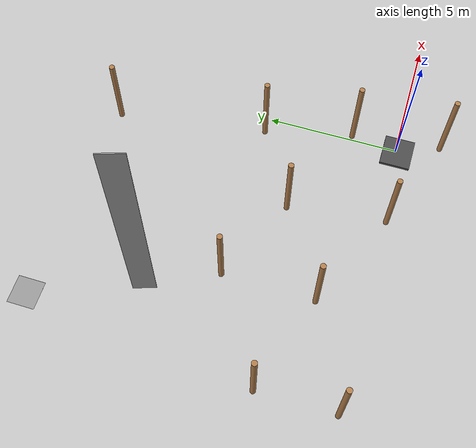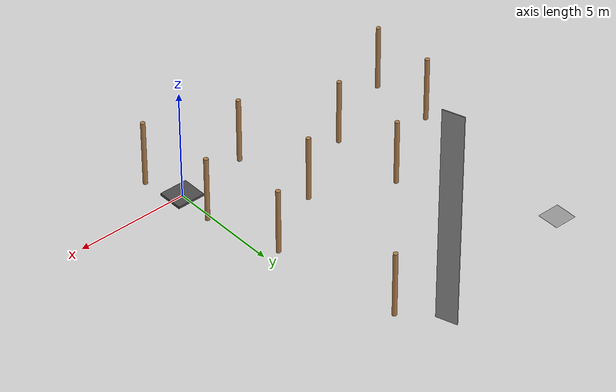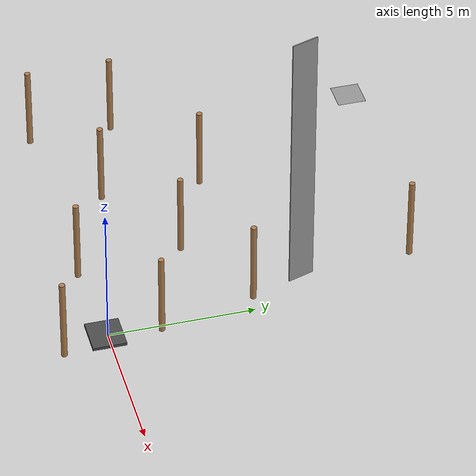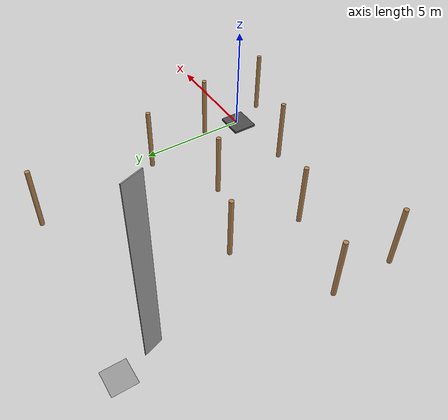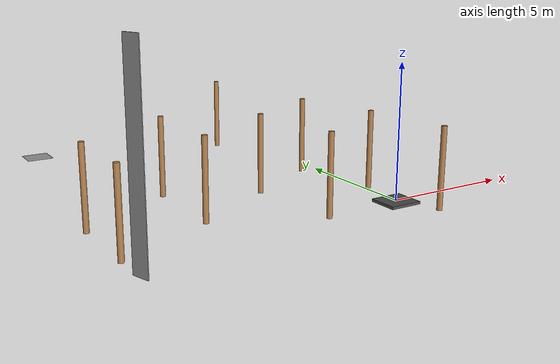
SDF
<sdf version="1.7">
 <world name="default">
  <model name="asphalt_plane">
   <pose>-0.054783 -0.070898 0 0 -0 0</pose>
   <static>1</static>
   <link name="link">
    <collision name="collision"><geometry><box><size>1.26307 1.14506 0.1</size></box></geometry></collision>
    <visual name="visual">
     <cast_shadows>0</cast_shadows>
     <geometry><box><size>1.26307 1.14506 0.1</size></box></geometry>
     <material>
      <script>
       <uri>model://asphalt_plane/materials/scripts</uri>
       <uri>model://asphalt_plane/materials/textures</uri>
       <name>vrc/asphalt</name>
      </script>
     </material>
    </visual>
   </link>
  </model>
  <model name="wooden_cylinder1_clone_1">
   <pose>-10.642 2.62246 -6e-05 0 -0 0</pose>
   <link name="wooden_cylinder::link_0">
    <pose>0 0 1.5 0 -0 0</pose>
    <inertial>
     <mass>1</mass>
     <inertia><ixx>0.145833</ixx><ixy>0</ixy><ixz>0</ixz><iyy>0.145833</iyy><iyz>0</iyz><izz>0.125</izz></inertia>
    </inertial>
    <visual name="visual">
     <geometry><cylinder><radius>0.1</radius><length>3</length></cylinder></geometry>
     <material>
      <lighting>1</lighting>
      <script><uri>file://media/materials/scripts/gazebo.material</uri><name>Gazebo/Wood</name></script>
      <ambient>0.3 0.3 0.3 1</ambient>
      <diffuse>0.7 0.7 0.7 1</diffuse>
      <specular>0.01 0.01 0.01 1</specular>
      <emissive>0 0 0 1</emissive>
      <shader type="vertex"><normal_map>__default__</normal_map></shader>
     </material>
    </visual>
    <collision name="collision">
     <geometry><cylinder><radius>0.1</radius><length>3</length></cylinder></geometry>
     <surface>
      <friction>
       <ode><mu>1</mu><mu2>1</mu2><fdir1>0 0 0</fdir1><slip1>0</slip1><slip2>0</slip2></ode>
       <torsional>
        <coefficient>1</coefficient>
        <patch_radius>0</patch_radius>
        <surface_radius>0</surface_radius>
        <use_patch_radius>1</use_patch_radius>
        <ode><slip>0</slip></ode>
       </torsional>
      </friction>
      <bounce><restitution_coefficient>0</restitution_coefficient><threshold>1e+06</threshold></bounce>
      <contact>
       <collide_without_contact>0</collide_without_contact>
       <collide_without_contact_bitmask>1</collide_without_contact_bitmask>
       <collide_bitmask>1</collide_bitmask>
       <ode>
        <soft_cfm>0</soft_cfm>
        <soft_erp>0.2</soft_erp>
        <kp>1e+13</kp>
        <kd>1</kd>
        <max_vel>0.01</max_vel>
        <min_depth>0</min_depth>
       </ode>
       <bullet>
        <split_impulse>1</split_impulse>
        <split_impulse_penetration_threshold>-0.01</split_impulse_penetration_threshold>
        <soft_cfm>0</soft_cfm>
        <soft_erp>0.2</soft_erp>
        <kp>1e+13</kp>
        <kd>1</kd>
       </bullet>
      </contact>
     </surface>
    </collision>
   </link>
   <static>1</static>
  </model>
  <model name="wooden_cylinder1_clone_4">
   <pose>-10.6103 -0.27054 0.0001 0 -0 0</pose>
   <link name="wooden_cylinder::link_0">
    <pose>0 0 1.5 0 -0 0</pose>
    <inertial>
     <mass>1</mass>
     <inertia><ixx>0.145833</ixx><ixy>0</ixy><ixz>0</ixz><iyy>0.145833</iyy><iyz>0</iyz><izz>0.125</izz></inertia>
    </inertial>
    <visual name="visual">
     <geometry><cylinder><radius>0.1</radius><length>3</length></cylinder></geometry>
     <material>
      <lighting>1</lighting>
      <script><uri>file://media/materials/scripts/gazebo.material</uri><name>Gazebo/Wood</name></script>
      <ambient>0.3 0.3 0.3 1</ambient>
      <diffuse>0.7 0.7 0.7 1</diffuse>
      <specular>0.01 0.01 0.01 1</specular>
      <emissive>0 0 0 1</emissive>
      <shader type="vertex"><normal_map>__default__</normal_map></shader>
     </material>
    </visual>
    <collision name="collision">
     <geometry><cylinder><radius>0.1</radius><length>3</length></cylinder></geometry>
     <surface>
      <friction>
       <ode><mu>1</mu><mu2>1</mu2><fdir1>0 0 0</fdir1><slip1>0</slip1><slip2>0</slip2></ode>
       <torsional>
        <coefficient>1</coefficient>
        <patch_radius>0</patch_radius>
        <surface_radius>0</surface_radius>
        <use_patch_radius>1</use_patch_radius>
        <ode><slip>0</slip></ode>
       </torsional>
      </friction>
      <bounce><restitution_coefficient>0</restitution_coefficient><threshold>1e+06</threshold></bounce>
      <contact>
       <collide_without_contact>0</collide_without_contact>
       <collide_without_contact_bitmask>1</collide_without_contact_bitmask>
       <collide_bitmask>1</collide_bitmask>
       <ode>
        <soft_cfm>0</soft_cfm>
        <soft_erp>0.2</soft_erp>
        <kp>1e+13</kp>
        <kd>1</kd>
        <max_vel>0.01</max_vel>
        <min_depth>0</min_depth>
       </ode>
       <bullet>
        <split_impulse>1</split_impulse>
        <split_impulse_penetration_threshold>-0.01</split_impulse_penetration_threshold>
        <soft_cfm>0</soft_cfm>
        <soft_erp>0.2</soft_erp>
        <kp>1e+13</kp>
        <kd>1</kd>
       </bullet>
      </contact>
     </surface>
    </collision>
   </link>
   <static>1</static>
  </model>
  <model name="wooden_cylinder1_clone_5">
   <pose>-6.96669 1.43108 5e-05 0 -0 0</pose>
   <link name="wooden_cylinder::link_0">
    <pose>0 0 1.5 0 -0 0</pose>
    <inertial>
     <mass>1</mass>
     <inertia><ixx>0.145833</ixx><ixy>0</ixy><ixz>0</ixz><iyy>0.145833</iyy><iyz>0</iyz><izz>0.125</izz></inertia>
    </inertial>
    <visual name="visual">
     <geometry><cylinder><radius>0.1</radius><length>3</length></cylinder></geometry>
     <material>
      <lighting>1</lighting>
      <script><uri>file://media/materials/scripts/gazebo.material</uri><name>Gazebo/Wood</name></script>
      <ambient>0.3 0.3 0.3 1</ambient>
      <diffuse>0.7 0.7 0.7 1</diffuse>
      <specular>0.01 0.01 0.01 1</specular>
      <emissive>0 0 0 1</emissive>
      <shader type="vertex"><normal_map>__default__</normal_map></shader>
     </material>
    </visual>
    <collision name="collision">
     <geometry><cylinder><radius>0.1</radius><length>3</length></cylinder></geometry>
     <surface>
      <friction>
       <ode><mu>1</mu><mu2>1</mu2><fdir1>0 0 0</fdir1><slip1>0</slip1><slip2>0</slip2></ode>
       <torsional>
        <coefficient>1</coefficient>
        <patch_radius>0</patch_radius>
        <surface_radius>0</surface_radius>
        <use_patch_radius>1</use_patch_radius>
        <ode><slip>0</slip></ode>
       </torsional>
      </friction>
      <bounce><restitution_coefficient>0</restitution_coefficient><threshold>1e+06</threshold></bounce>
      <contact>
       <collide_without_contact>0</collide_without_contact>
       <collide_without_contact_bitmask>1</collide_without_contact_bitmask>
       <collide_bitmask>1</collide_bitmask>
       <ode>
        <soft_cfm>0</soft_cfm>
        <soft_erp>0.2</soft_erp>
        <kp>1e+13</kp>
        <kd>1</kd>
        <max_vel>0.01</max_vel>
        <min_depth>0</min_depth>
       </ode>
       <bullet>
        <split_impulse>1</split_impulse>
        <split_impulse_penetration_threshold>-0.01</split_impulse_penetration_threshold>
        <soft_cfm>0</soft_cfm>
        <soft_erp>0.2</soft_erp>
        <kp>1e+13</kp>
        <kd>1</kd>
       </bullet>
      </contact>
     </surface>
    </collision>
   </link>
   <static>1</static>
  </model>
  <model name="wooden_cylinder1_clone_9">
   <pose>-3.17556 -0.278555 5e-05 0 -0 0</pose>
   <link name="wooden_cylinder::link_0">
    <pose>0 0 1.5 0 -0 0</pose>
    <inertial>
     <mass>1</mass>
     <inertia><ixx>0.145833</ixx><ixy>0</ixy><ixz>0</ixz><iyy>0.145833</iyy><iyz>0</iyz><izz>0.125</izz></inertia>
    </inertial>
    <visual name="visual">
     <geometry><cylinder><radius>0.1</radius><length>3</length></cylinder></geometry>
     <material>
      <lighting>1</lighting>
      <script><uri>file://media/materials/scripts/gazebo.material</uri><name>Gazebo/Wood</name></script>
      <ambient>0.3 0.3 0.3 1</ambient>
      <diffuse>0.7 0.7 0.7 1</diffuse>
      <specular>0.01 0.01 0.01 1</specular>
      <emissive>0 0 0 1</emissive>
      <shader type="vertex"><normal_map>__default__</normal_map></shader>
     </material>
    </visual>
    <collision name="collision">
     <geometry><cylinder><radius>0.1</radius><length>3</length></cylinder></geometry>
     <surface>
      <friction>
       <ode><mu>1</mu><mu2>1</mu2><fdir1>0 0 0</fdir1><slip1>0</slip1><slip2>0</slip2></ode>
       <torsional>
        <coefficient>1</coefficient>
        <patch_radius>0</patch_radius>
        <surface_radius>0</surface_radius>
        <use_patch_radius>1</use_patch_radius>
        <ode><slip>0</slip></ode>
       </torsional>
      </friction>
      <bounce><restitution_coefficient>0</restitution_coefficient><threshold>1e+06</threshold></bounce>
      <contact>
       <collide_without_contact>0</collide_without_contact>
       <collide_without_contact_bitmask>1</collide_without_contact_bitmask>
       <collide_bitmask>1</collide_bitmask>
       <ode>
        <soft_cfm>0</soft_cfm>
        <soft_erp>0.2</soft_erp>
        <kp>1e+13</kp>
        <kd>1</kd>
        <max_vel>0.01</max_vel>
        <min_depth>0</min_depth>
       </ode>
       <bullet>
        <split_impulse>1</split_impulse>
        <split_impulse_penetration_threshold>-0.01</split_impulse_penetration_threshold>
        <soft_cfm>0</soft_cfm>
        <soft_erp>0.2</soft_erp>
        <kp>1e+13</kp>
        <kd>1</kd>
       </bullet>
      </contact>
     </surface>
    </collision>
   </link>
   <static>1</static>
  </model>
  <model name="wooden_cylinder1_clone_24">
   <pose>0.582381 -1.60032 7e-05 0 -0 0</pose>
   <link name="wooden_cylinder::link_0">
    <pose>0 0 1.5 0 -0 0</pose>
    <inertial>
     <mass>1</mass>
     <inertia><ixx>0.145833</ixx><ixy>0</ixy><ixz>0</ixz><iyy>0.145833</iyy><iyz>0</iyz><izz>0.125</izz></inertia>
    </inertial>
    <visual name="visual">
     <geometry><cylinder><radius>0.1</radius><length>3</length></cylinder></geometry>
     <material>
      <lighting>1</lighting>
      <script><uri>file://media/materials/scripts/gazebo.material</uri><name>Gazebo/Wood</name></script>
      <ambient>0.3 0.3 0.3 1</ambient>
      <diffuse>0.7 0.7 0.7 1</diffuse>
      <specular>0.01 0.01 0.01 1</specular>
      <emissive>0 0 0 1</emissive>
      <shader type="vertex"><normal_map>__default__</normal_map></shader>
     </material>
    </visual>
    <collision name="collision">
     <geometry><cylinder><radius>0.1</radius><length>3</length></cylinder></geometry>
     <surface>
      <friction>
       <ode><mu>1</mu><mu2>1</mu2><fdir1>0 0 0</fdir1><slip1>0</slip1><slip2>0</slip2></ode>
       <torsional>
        <coefficient>1</coefficient>
        <patch_radius>0</patch_radius>
        <surface_radius>0</surface_radius>
        <use_patch_radius>1</use_patch_radius>
        <ode><slip>0</slip></ode>
       </torsional>
      </friction>
      <bounce><restitution_coefficient>0</restitution_coefficient><threshold>1e+06</threshold></bounce>
      <contact>
       <collide_without_contact>0</collide_without_contact>
       <collide_without_contact_bitmask>1</collide_without_contact_bitmask>
       <collide_bitmask>1</collide_bitmask>
       <ode>
        <soft_cfm>0</soft_cfm>
        <soft_erp>0.2</soft_erp>
        <kp>1e+13</kp>
        <kd>1</kd>
        <max_vel>0.01</max_vel>
        <min_depth>0</min_depth>
       </ode>
       <bullet>
        <split_impulse>1</split_impulse>
        <split_impulse_penetration_threshold>-0.01</split_impulse_penetration_threshold>
        <soft_cfm>0</soft_cfm>
        <soft_erp>0.2</soft_erp>
        <kp>1e+13</kp>
        <kd>1</kd>
       </bullet>
      </contact>
     </surface>
    </collision>
   </link>
   <static>1</static>
  </model>
  <model name="wooden_cylinder1_clone_26">
   <pose>0.175606 1.77763 6e-05 0 -0 0</pose>
   <link name="wooden_cylinder::link_0">
    <pose>0 0 1.5 0 -0 0</pose>
    <inertial>
     <mass>1</mass>
     <inertia><ixx>0.145833</ixx><ixy>0</ixy><ixz>0</ixz><iyy>0.145833</iyy><iyz>0</iyz><izz>0.125</izz></inertia>
    </inertial>
    <visual name="visual">
     <geometry><cylinder><radius>0.1</radius><length>3</length></cylinder></geometry>
     <material>
      <lighting>1</lighting>
      <script><uri>file://media/materials/scripts/gazebo.material</uri><name>Gazebo/Wood</name></script>
      <ambient>0.3 0.3 0.3 1</ambient>
      <diffuse>0.7 0.7 0.7 1</diffuse>
      <specular>0.01 0.01 0.01 1</specular>
      <emissive>0 0 0 1</emissive>
      <shader type="vertex"><normal_map>__default__</normal_map></shader>
     </material>
    </visual>
    <collision name="collision">
     <geometry><cylinder><radius>0.1</radius><length>3</length></cylinder></geometry>
     <surface>
      <friction>
       <ode><mu>1</mu><mu2>1</mu2><fdir1>0 0 0</fdir1><slip1>0</slip1><slip2>0</slip2></ode>
       <torsional>
        <coefficient>1</coefficient>
        <patch_radius>0</patch_radius>
        <surface_radius>0</surface_radius>
        <use_patch_radius>1</use_patch_radius>
        <ode><slip>0</slip></ode>
       </torsional>
      </friction>
      <bounce><restitution_coefficient>0</restitution_coefficient><threshold>1e+06</threshold></bounce>
      <contact>
       <collide_without_contact>0</collide_without_contact>
       <collide_without_contact_bitmask>1</collide_without_contact_bitmask>
       <collide_bitmask>1</collide_bitmask>
       <ode>
        <soft_cfm>0</soft_cfm>
        <soft_erp>0.2</soft_erp>
        <kp>1e+13</kp>
        <kd>1</kd>
        <max_vel>0.01</max_vel>
        <min_depth>0</min_depth>
       </ode>
       <bullet>
        <split_impulse>1</split_impulse>
        <split_impulse_penetration_threshold>-0.01</split_impulse_penetration_threshold>
        <soft_cfm>0</soft_cfm>
        <soft_erp>0.2</soft_erp>
        <kp>1e+13</kp>
        <kd>1</kd>
       </bullet>
      </contact>
     </surface>
    </collision>
   </link>
   <static>1</static>
  </model>
  <model name="wooden_cylinder1_clone_27">
   <pose>-3.64792 3.38842 4e-05 0 -0 0</pose>
   <link name="wooden_cylinder::link_0">
    <pose>0 0 1.5 0 -0 0</pose>
    <inertial>
     <mass>1</mass>
     <inertia><ixx>0.145833</ixx><ixy>0</ixy><ixz>0</ixz><iyy>0.145833</iyy><iyz>0</iyz><izz>0.125</izz></inertia>
    </inertial>
    <visual name="visual">
     <geometry><cylinder><radius>0.1</radius><length>3</length></cylinder></geometry>
     <material>
      <lighting>1</lighting>
      <script><uri>file://media/materials/scripts/gazebo.material</uri><name>Gazebo/Wood</name></script>
      <ambient>0.3 0.3 0.3 1</ambient>
      <diffuse>0.7 0.7 0.7 1</diffuse>
      <specular>0.01 0.01 0.01 1</specular>
      <emissive>0 0 0 1</emissive>
      <shader type="vertex"><normal_map>__default__</normal_map></shader>
     </material>
    </visual>
    <collision name="collision">
     <geometry><cylinder><radius>0.1</radius><length>3</length></cylinder></geometry>
     <surface>
      <friction>
       <ode><mu>1</mu><mu2>1</mu2><fdir1>0 0 0</fdir1><slip1>0</slip1><slip2>0</slip2></ode>
       <torsional>
        <coefficient>1</coefficient>
        <patch_radius>0</patch_radius>
        <surface_radius>0</surface_radius>
        <use_patch_radius>1</use_patch_radius>
        <ode><slip>0</slip></ode>
       </torsional>
      </friction>
      <bounce><restitution_coefficient>0</restitution_coefficient><threshold>1e+06</threshold></bounce>
      <contact>
       <collide_without_contact>0</collide_without_contact>
       <collide_without_contact_bitmask>1</collide_without_contact_bitmask>
       <collide_bitmask>1</collide_bitmask>
       <ode>
        <soft_cfm>0</soft_cfm>
        <soft_erp>0.2</soft_erp>
        <kp>1e+13</kp>
        <kd>1</kd>
        <max_vel>0.01</max_vel>
        <min_depth>0</min_depth>
       </ode>
       <bullet>
        <split_impulse>1</split_impulse>
        <split_impulse_penetration_threshold>-0.01</split_impulse_penetration_threshold>
        <soft_cfm>0</soft_cfm>
        <soft_erp>0.2</soft_erp>
        <kp>1e+13</kp>
        <kd>1</kd>
       </bullet>
      </contact>
     </surface>
    </collision>
   </link>
   <static>1</static>
  </model>
  <model name="wooden_cylinder1_clone_29">
   <pose>-6.93659 4.8959 2e-05 0 -0 0</pose>
   <link name="wooden_cylinder::link_0">
    <pose>0 0 1.5 0 -0 0</pose>
    <inertial>
     <mass>1</mass>
     <inertia><ixx>0.145833</ixx><ixy>0</ixy><ixz>0</ixz><iyy>0.145833</iyy><iyz>0</iyz><izz>0.125</izz></inertia>
    </inertial>
    <visual name="visual">
     <geometry><cylinder><radius>0.1</radius><length>3</length></cylinder></geometry>
     <material>
      <lighting>1</lighting>
      <script><uri>file://media/materials/scripts/gazebo.material</uri><name>Gazebo/Wood</name></script>
      <ambient>0.3 0.3 0.3 1</ambient>
      <diffuse>0.7 0.7 0.7 1</diffuse>
      <specular>0.01 0.01 0.01 1</specular>
      <emissive>0 0 0 1</emissive>
      <shader type="vertex"><normal_map>__default__</normal_map></shader>
     </material>
    </visual>
    <collision name="collision">
     <geometry><cylinder><radius>0.1</radius><length>3</length></cylinder></geometry>
     <surface>
      <friction>
       <ode><mu>1</mu><mu2>1</mu2><fdir1>0 0 0</fdir1><slip1>0</slip1><slip2>0</slip2></ode>
       <torsional>
        <coefficient>1</coefficient>
        <patch_radius>0</patch_radius>
        <surface_radius>0</surface_radius>
        <use_patch_radius>1</use_patch_radius>
        <ode><slip>0</slip></ode>
       </torsional>
      </friction>
      <bounce><restitution_coefficient>0</restitution_coefficient><threshold>1e+06</threshold></bounce>
      <contact>
       <collide_without_contact>0</collide_without_contact>
       <collide_without_contact_bitmask>1</collide_without_contact_bitmask>
       <collide_bitmask>1</collide_bitmask>
       <ode>
        <soft_cfm>0</soft_cfm>
        <soft_erp>0.2</soft_erp>
        <kp>1e+13</kp>
        <kd>1</kd>
        <max_vel>0.01</max_vel>
        <min_depth>0</min_depth>
       </ode>
       <bullet>
        <split_impulse>1</split_impulse>
        <split_impulse_penetration_threshold>-0.01</split_impulse_penetration_threshold>
        <soft_cfm>0</soft_cfm>
        <soft_erp>0.2</soft_erp>
        <kp>1e+13</kp>
        <kd>1</kd>
       </bullet>
      </contact>
     </surface>
    </collision>
   </link>
   <static>1</static>
  </model>
  <model name="wooden_cylinder1_clone_34">
   <pose>-0.627193 5.1014 0.00013 0 -0 0</pose>
   <link name="wooden_cylinder::link_0">
    <pose>0 0 1.5 0 -0 0</pose>
    <inertial>
     <mass>1</mass>
     <inertia><ixx>0.145833</ixx><ixy>0</ixy><ixz>0</ixz><iyy>0.145833</iyy><iyz>0</iyz><izz>0.125</izz></inertia>
    </inertial>
    <visual name="visual">
     <geometry><cylinder><radius>0.1</radius><length>3</length></cylinder></geometry>
     <material>
      <lighting>1</lighting>
      <script><uri>file://media/materials/scripts/gazebo.material</uri><name>Gazebo/Wood</name></script>
      <ambient>0.3 0.3 0.3 1</ambient>
      <diffuse>0.7 0.7 0.7 1</diffuse>
      <specular>0.01 0.01 0.01 1</specular>
      <emissive>0 0 0 1</emissive>
      <shader type="vertex"><normal_map>__default__</normal_map></shader>
     </material>
    </visual>
    <collision name="collision">
     <geometry><cylinder><radius>0.1</radius><length>3</length></cylinder></geometry>
     <surface>
      <friction>
       <ode><mu>1</mu><mu2>1</mu2><fdir1>0 0 0</fdir1><slip1>0</slip1><slip2>0</slip2></ode>
       <torsional>
        <coefficient>1</coefficient>
        <patch_radius>0</patch_radius>
        <surface_radius>0</surface_radius>
        <use_patch_radius>1</use_patch_radius>
        <ode><slip>0</slip></ode>
       </torsional>
      </friction>
      <bounce><restitution_coefficient>0</restitution_coefficient><threshold>1e+06</threshold></bounce>
      <contact>
       <collide_without_contact>0</collide_without_contact>
       <collide_without_contact_bitmask>1</collide_without_contact_bitmask>
       <collide_bitmask>1</collide_bitmask>
       <ode>
        <soft_cfm>0</soft_cfm>
        <soft_erp>0.2</soft_erp>
        <kp>1e+13</kp>
        <kd>1</kd>
        <max_vel>0.01</max_vel>
        <min_depth>0</min_depth>
       </ode>
       <bullet>
        <split_impulse>1</split_impulse>
        <split_impulse_penetration_threshold>-0.01</split_impulse_penetration_threshold>
        <soft_cfm>0</soft_cfm>
        <soft_erp>0.2</soft_erp>
        <kp>1e+13</kp>
        <kd>1</kd>
       </bullet>
      </contact>
     </surface>
    </collision>
   </link>
   <static>1</static>
  </model>
  <model name="wooden_cylinder1_clone_39">
   <pose>-1.49559 10.7742 -8e-05 0 -0 0</pose>
   <link name="wooden_cylinder::link_0">
    <pose>0 0 1.5 0 -0 0</pose>
    <inertial>
     <mass>1</mass>
     <inertia><ixx>0.145833</ixx><ixy>0</ixy><ixz>0</ixz><iyy>0.145833</iyy><iyz>0</iyz><izz>0.125</izz></inertia>
    </inertial>
    <visual name="visual">
     <geometry><cylinder><radius>0.1</radius><length>3</length></cylinder></geometry>
     <material>
      <lighting>1</lighting>
      <script><uri>file://media/materials/scripts/gazebo.material</uri><name>Gazebo/Wood</name></script>
      <ambient>0.3 0.3 0.3 1</ambient>
      <diffuse>0.7 0.7 0.7 1</diffuse>
      <specular>0.01 0.01 0.01 1</specular>
      <emissive>0 0 0 1</emissive>
      <shader type="vertex"><normal_map>__default__</normal_map></shader>
     </material>
    </visual>
    <collision name="collision">
     <geometry><cylinder><radius>0.1</radius><length>3</length></cylinder></geometry>
     <surface>
      <friction>
       <ode><mu>1</mu><mu2>1</mu2><fdir1>0 0 0</fdir1><slip1>0</slip1><slip2>0</slip2></ode>
       <torsional>
        <coefficient>1</coefficient>
        <patch_radius>0</patch_radius>
        <surface_radius>0</surface_radius>
        <use_patch_radius>1</use_patch_radius>
        <ode><slip>0</slip></ode>
       </torsional>
      </friction>
      <bounce><restitution_coefficient>0</restitution_coefficient><threshold>1e+06</threshold></bounce>
      <contact>
       <collide_without_contact>0</collide_without_contact>
       <collide_without_contact_bitmask>1</collide_without_contact_bitmask>
       <collide_bitmask>1</collide_bitmask>
       <ode>
        <soft_cfm>0</soft_cfm>
        <soft_erp>0.2</soft_erp>
        <kp>1e+13</kp>
        <kd>1</kd>
        <max_vel>0.01</max_vel>
        <min_depth>0</min_depth>
       </ode>
       <bullet>
        <split_impulse>1</split_impulse>
        <split_impulse_penetration_threshold>-0.01</split_impulse_penetration_threshold>
        <soft_cfm>0</soft_cfm>
        <soft_erp>0.2</soft_erp>
        <kp>1e+13</kp>
        <kd>1</kd>
       </bullet>
      </contact>
     </surface>
    </collision>
   </link>
   <static>1</static>
  </model>
  <model name="unit_box">
   <pose>-9.76604 11.0546 0.5 0 -0 0</pose>
   <link name="link">
    <inertial>
     <mass>1</mass>
     <inertia>
      <ixx>0.166667</ixx>
      <ixy>0</ixy>
      <ixz>0</ixz>
      <iyy>0.166667</iyy>
      <iyz>0</iyz>
      <izz>0.166667</izz>
     </inertia>
    </inertial>
    <collision name="collision"><geometry><box><size>1.0222 1 0.000901607</size></box></geometry></collision>
    <visual name="visual">
     <geometry><box><size>1.0222 1 0.000901607</size></box></geometry>
     <material>
      <script><name>Gazebo/Grey</name><uri>file://media/materials/scripts/gazebo.material</uri></script>
     </material>
    </visual>
   </link>
  </model>
  <model name="unit_box_clone">
   <pose>-6.49847 8.47162 0.5 0 -0 0.317613</pose>
   <link name="link">
    <inertial>
     <mass>1</mass>
     <inertia>
      <ixx>0.166667</ixx>
      <ixy>0</ixy>
      <ixz>0</ixz>
      <iyy>0.166667</iyy>
      <iyz>0</iyz>
      <izz>0.166667</izz>
     </inertia>
    </inertial>
    <collision name="collision"><geometry><box><size>0.0439505 1 10.3633</size></box></geometry></collision>
    <visual name="visual">
     <geometry><box><size>0.0439505 1 10.3633</size></box></geometry>
     <material>
      <script><name>Gazebo/Grey</name><uri>file://media/materials/scripts/gazebo.material</uri></script>
     </material>
    </visual>
   </link>
  </model>
 </world>
</sdf>
